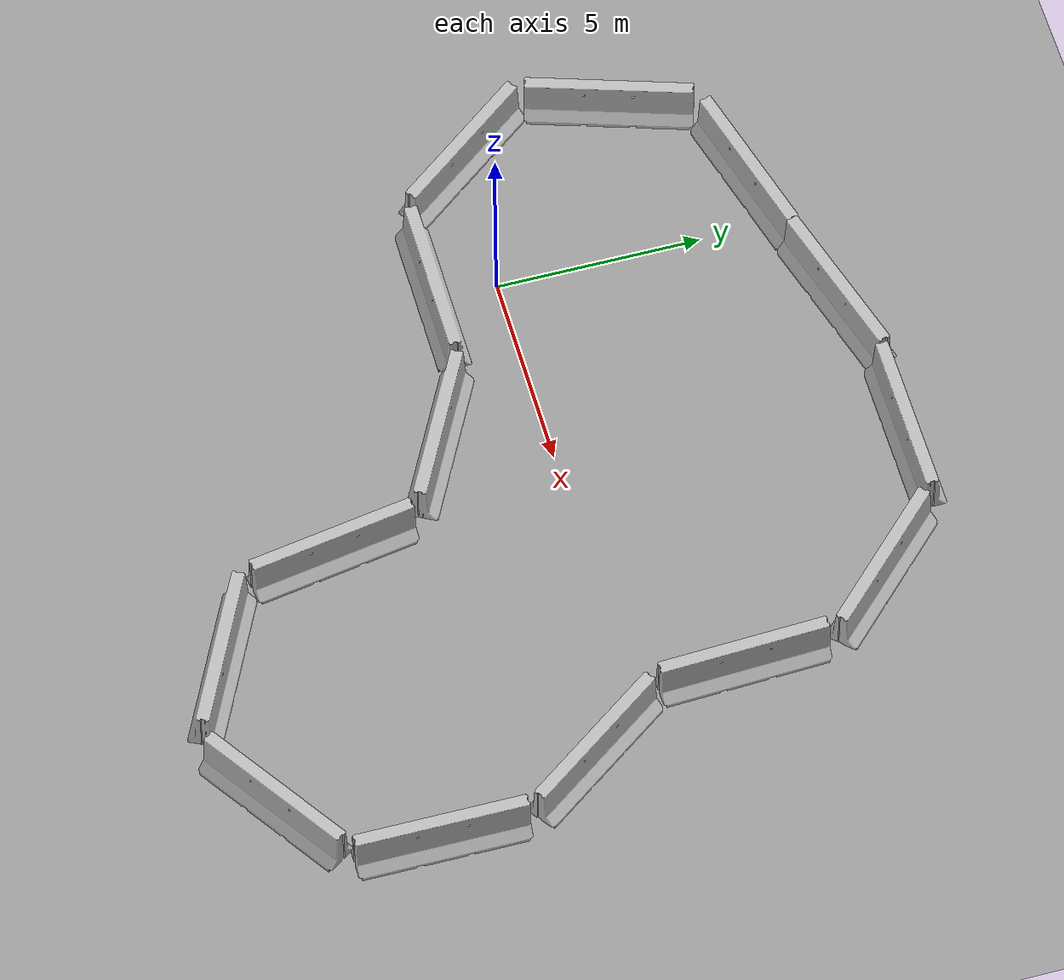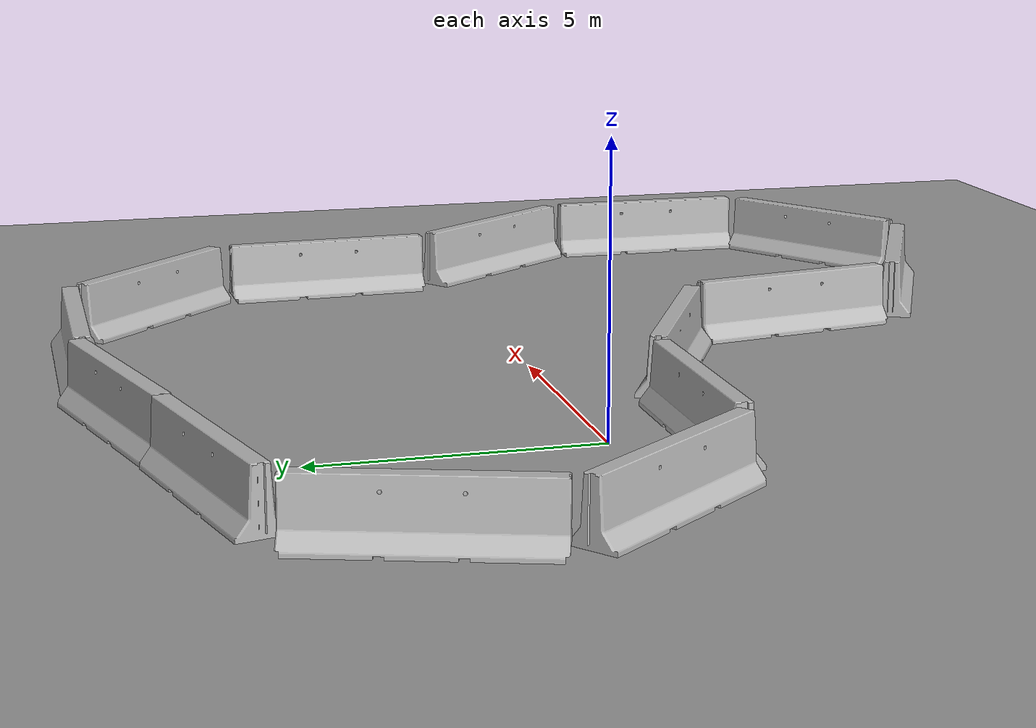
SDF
<sdf version="1.6">
 <world name="default">
  <light name="sun" type="directional">
   <pose>0 0 10 0 -0 0</pose>
   <diffuse>0.8 0.8 0.8 1</diffuse>
   <specular>0.2 0.2 0.2 1</specular>
   <attenuation>
    <range>1000</range>
    <constant>0.9</constant>
    <linear>0.01</linear>
    <quadratic>0.001</quadratic>
   </attenuation>
   <direction>0.5 0.1 -0.9</direction>
  </light>
  <scene><ambient>0.4 0.4 0.4 1</ambient><background>0.7 0.7 0.7 1</background><shadows>1</shadows></scene>
  <physics name="default_physics" default="0" type="ode">
   <max_step_size>0.01</max_step_size>
   <real_time_factor>1</real_time_factor>
   <real_time_update_rate>100</real_time_update_rate>
  </physics>
  <model name="ground_plane_0">
   <static>1</static>
   <link name="link">
    <collision name="collision">
     <geometry><plane><normal>0 0 1</normal><size>100 100</size></plane></geometry>
     <surface><friction><ode><mu>100</mu><mu2>50</mu2></ode></friction></surface>
    </collision>
    <visual name="visual">
     <cast_shadows>0</cast_shadows>
     <geometry><plane><normal>0 0 1</normal><size>100 100</size></plane></geometry>
     <material>
      <script><uri>file://media/materials/scripts/gazebo.material</uri><name>Gazebo/Grey</name></script>
     </material>
    </visual>
    <velocity_decay><linear>0</linear><angular>0</angular></velocity_decay>
   </link>
   <pose>0.497681 0 0 0 -0 0</pose>
  </model>
  <gravity>0 0 -9.8</gravity>
  <magnetic_field>6e-06 2.3e-05 -4.2e-05</magnetic_field>
  <atmosphere type="adiabatic"/>
  <spherical_coordinates>
   <surface_model>EARTH_WGS84</surface_model>
   <latitude_deg>0</latitude_deg>
   <longitude_deg>0</longitude_deg>
   <elevation>0</elevation>
   <heading_deg>0</heading_deg>
  </spherical_coordinates>
  <model name="jersey_barrier_0">
   <static>1</static>
   <link name="link">
    <visual name="visual">
     <geometry>
      <mesh><uri>model://jersey_barrier/meshes/jersey_barrier.dae</uri><scale>1 1 1</scale></mesh>
     </geometry>
    </visual>
    <collision name="upright">
     <pose>0 0 0.5715 0 -0 0</pose>
     <geometry><box><size>4.06542 0.3063 1.143</size></box></geometry>
    </collision>
    <collision name="base">
     <pose>0 0 0.032258 0 -0 0</pose>
     <geometry><box><size>4.06542 0.8107 0.064516</size></box></geometry>
    </collision>
    <collision name="base2">
     <pose>0 0 0.1 0 -0 0</pose>
     <geometry><box><size>4.06542 0.65 0.1</size></box></geometry>
    </collision>
    <collision name="base3">
     <pose>0 0 0.2 0 -0 0</pose>
     <geometry><box><size>4.06542 0.5 0.1</size></box></geometry>
    </collision>
    <collision name="left-angle">
     <pose>0 -0.224 0.2401 0.9 -0 0</pose>
     <geometry><box><size>4.06542 0.5 0.064516</size></box></geometry>
    </collision>
    <collision name="right-angle">
     <pose>0 0.224 0.2401 -0.9 0 0</pose>
     <geometry><box><size>4.06542 0.5 0.064516</size></box></geometry>
    </collision>
   </link>
   <pose>0.004494 -1.55416 0 0 -0 0</pose>
  </model>
  <model name="jersey_barrier_1">
   <static>1</static>
   <link name="link">
    <visual name="visual">
     <geometry>
      <mesh><uri>model://jersey_barrier/meshes/jersey_barrier.dae</uri><scale>1 1 1</scale></mesh>
     </geometry>
    </visual>
    <collision name="upright">
     <pose>0 0 0.5715 0 -0 0</pose>
     <geometry><box><size>4.06542 0.3063 1.143</size></box></geometry>
    </collision>
    <collision name="base">
     <pose>0 0 0.032258 0 -0 0</pose>
     <geometry><box><size>4.06542 0.8107 0.064516</size></box></geometry>
    </collision>
    <collision name="base2">
     <pose>0 0 0.1 0 -0 0</pose>
     <geometry><box><size>4.06542 0.65 0.1</size></box></geometry>
    </collision>
    <collision name="base3">
     <pose>0 0 0.2 0 -0 0</pose>
     <geometry><box><size>4.06542 0.5 0.1</size></box></geometry>
    </collision>
    <collision name="left-angle">
     <pose>0 -0.224 0.2401 0.9 -0 0</pose>
     <geometry><box><size>4.06542 0.5 0.064516</size></box></geometry>
    </collision>
    <collision name="right-angle">
     <pose>0 0.224 0.2401 -0.9 0 0</pose>
     <geometry><box><size>4.06542 0.5 0.064516</size></box></geometry>
    </collision>
   </link>
   <pose>4.04683 -2.50581 0 0 0 -0.479367</pose>
  </model>
  <model name="jersey_barrier_2">
   <static>1</static>
   <link name="link">
    <visual name="visual">
     <geometry>
      <mesh><uri>model://jersey_barrier/meshes/jersey_barrier.dae</uri><scale>1 1 1</scale></mesh>
     </geometry>
    </visual>
    <collision name="upright">
     <pose>0 0 0.5715 0 -0 0</pose>
     <geometry><box><size>4.06542 0.3063 1.143</size></box></geometry>
    </collision>
    <collision name="base">
     <pose>0 0 0.032258 0 -0 0</pose>
     <geometry><box><size>4.06542 0.8107 0.064516</size></box></geometry>
    </collision>
    <collision name="base2">
     <pose>0 0 0.1 0 -0 0</pose>
     <geometry><box><size>4.06542 0.65 0.1</size></box></geometry>
    </collision>
    <collision name="base3">
     <pose>0 0 0.2 0 -0 0</pose>
     <geometry><box><size>4.06542 0.5 0.1</size></box></geometry>
    </collision>
    <collision name="left-angle">
     <pose>0 -0.224 0.2401 0.9 -0 0</pose>
     <geometry><box><size>4.06542 0.5 0.064516</size></box></geometry>
    </collision>
    <collision name="right-angle">
     <pose>0 0.224 0.2401 -0.9 0 0</pose>
     <geometry><box><size>4.06542 0.5 0.064516</size></box></geometry>
    </collision>
   </link>
   <pose>6.37868 -5.6815 0 0 0 -1.40504</pose>
  </model>
  <model name="jersey_barrier_3">
   <static>1</static>
   <link name="link">
    <visual name="visual">
     <geometry>
      <mesh><uri>model://jersey_barrier/meshes/jersey_barrier.dae</uri><scale>1 1 1</scale></mesh>
     </geometry>
    </visual>
    <collision name="upright">
     <pose>0 0 0.5715 0 -0 0</pose>
     <geometry><box><size>4.06542 0.3063 1.143</size></box></geometry>
    </collision>
    <collision name="base">
     <pose>0 0 0.032258 0 -0 0</pose>
     <geometry><box><size>4.06542 0.8107 0.064516</size></box></geometry>
    </collision>
    <collision name="base2">
     <pose>0 0 0.1 0 -0 0</pose>
     <geometry><box><size>4.06542 0.65 0.1</size></box></geometry>
    </collision>
    <collision name="base3">
     <pose>0 0 0.2 0 -0 0</pose>
     <geometry><box><size>4.06542 0.5 0.1</size></box></geometry>
    </collision>
    <collision name="left-angle">
     <pose>0 -0.224 0.2401 0.9 -0 0</pose>
     <geometry><box><size>4.06542 0.5 0.064516</size></box></geometry>
    </collision>
    <collision name="right-angle">
     <pose>0 0.224 0.2401 -0.9 0 0</pose>
     <geometry><box><size>4.06542 0.5 0.064516</size></box></geometry>
    </collision>
   </link>
   <pose>8.62913 -8.88429 0 0 -0 2.68938</pose>
  </model>
  <model name="jersey_barrier_4">
   <static>1</static>
   <link name="link">
    <visual name="visual">
     <geometry>
      <mesh><uri>model://jersey_barrier/meshes/jersey_barrier.dae</uri><scale>1 1 1</scale></mesh>
     </geometry>
    </visual>
    <collision name="upright">
     <pose>0 0 0.5715 0 -0 0</pose>
     <geometry><box><size>4.06542 0.3063 1.143</size></box></geometry>
    </collision>
    <collision name="base">
     <pose>0 0 0.032258 0 -0 0</pose>
     <geometry><box><size>4.06542 0.8107 0.064516</size></box></geometry>
    </collision>
    <collision name="base2">
     <pose>0 0 0.1 0 -0 0</pose>
     <geometry><box><size>4.06542 0.65 0.1</size></box></geometry>
    </collision>
    <collision name="base3">
     <pose>0 0 0.2 0 -0 0</pose>
     <geometry><box><size>4.06542 0.5 0.1</size></box></geometry>
    </collision>
    <collision name="left-angle">
     <pose>0 -0.224 0.2401 0.9 -0 0</pose>
     <geometry><box><size>4.06542 0.5 0.064516</size></box></geometry>
    </collision>
    <collision name="right-angle">
     <pose>0 0.224 0.2401 -0.9 0 0</pose>
     <geometry><box><size>4.06542 0.5 0.064516</size></box></geometry>
    </collision>
   </link>
   <pose>12.5499 -8.63219 0 0 -0 0.585574</pose>
  </model>
  <model name="jersey_barrier_5">
   <static>1</static>
   <link name="link">
    <visual name="visual">
     <geometry>
      <mesh><uri>model://jersey_barrier/meshes/jersey_barrier.dae</uri><scale>1 1 1</scale></mesh>
     </geometry>
    </visual>
    <collision name="upright">
     <pose>0 0 0.5715 0 -0 0</pose>
     <geometry><box><size>4.06542 0.3063 1.143</size></box></geometry>
    </collision>
    <collision name="base">
     <pose>0 0 0.032258 0 -0 0</pose>
     <geometry><box><size>4.06542 0.8107 0.064516</size></box></geometry>
    </collision>
    <collision name="base2">
     <pose>0 0 0.1 0 -0 0</pose>
     <geometry><box><size>4.06542 0.65 0.1</size></box></geometry>
    </collision>
    <collision name="base3">
     <pose>0 0 0.2 0 -0 0</pose>
     <geometry><box><size>4.06542 0.5 0.1</size></box></geometry>
    </collision>
    <collision name="left-angle">
     <pose>0 -0.224 0.2401 0.9 -0 0</pose>
     <geometry><box><size>4.06542 0.5 0.064516</size></box></geometry>
    </collision>
    <collision name="right-angle">
     <pose>0 0.224 0.2401 -0.9 0 0</pose>
     <geometry><box><size>4.06542 0.5 0.064516</size></box></geometry>
    </collision>
   </link>
   <pose>14.4347 -5.25619 0 0 -0 1.56705</pose>
  </model>
  <model name="jersey_barrier_6">
   <static>1</static>
   <link name="link">
    <visual name="visual">
     <geometry>
      <mesh><uri>model://jersey_barrier/meshes/jersey_barrier.dae</uri><scale>1 1 1</scale></mesh>
     </geometry>
    </visual>
    <collision name="upright">
     <pose>0 0 0.5715 0 -0 0</pose>
     <geometry><box><size>4.06542 0.3063 1.143</size></box></geometry>
    </collision>
    <collision name="base">
     <pose>0 0 0.032258 0 -0 0</pose>
     <geometry><box><size>4.06542 0.8107 0.064516</size></box></geometry>
    </collision>
    <collision name="base2">
     <pose>0 0 0.1 0 -0 0</pose>
     <geometry><box><size>4.06542 0.65 0.1</size></box></geometry>
    </collision>
    <collision name="base3">
     <pose>0 0 0.2 0 -0 0</pose>
     <geometry><box><size>4.06542 0.5 0.1</size></box></geometry>
    </collision>
    <collision name="left-angle">
     <pose>0 -0.224 0.2401 0.9 -0 0</pose>
     <geometry><box><size>4.06542 0.5 0.064516</size></box></geometry>
    </collision>
    <collision name="right-angle">
     <pose>0 0.224 0.2401 -0.9 0 0</pose>
     <geometry><box><size>4.06542 0.5 0.064516</size></box></geometry>
    </collision>
   </link>
   <pose>13.2082 -1.32571 0 0 0 -0.944193</pose>
  </model>
  <model name="jersey_barrier_7">
   <static>1</static>
   <link name="link">
    <visual name="visual">
     <geometry>
      <mesh><uri>model://jersey_barrier/meshes/jersey_barrier.dae</uri><scale>1 1 1</scale></mesh>
     </geometry>
    </visual>
    <collision name="upright">
     <pose>0 0 0.5715 0 -0 0</pose>
     <geometry><box><size>4.06542 0.3063 1.143</size></box></geometry>
    </collision>
    <collision name="base">
     <pose>0 0 0.032258 0 -0 0</pose>
     <geometry><box><size>4.06542 0.8107 0.064516</size></box></geometry>
    </collision>
    <collision name="base2">
     <pose>0 0 0.1 0 -0 0</pose>
     <geometry><box><size>4.06542 0.65 0.1</size></box></geometry>
    </collision>
    <collision name="base3">
     <pose>0 0 0.2 0 -0 0</pose>
     <geometry><box><size>4.06542 0.5 0.1</size></box></geometry>
    </collision>
    <collision name="left-angle">
     <pose>0 -0.224 0.2401 0.9 -0 0</pose>
     <geometry><box><size>4.06542 0.5 0.064516</size></box></geometry>
    </collision>
    <collision name="right-angle">
     <pose>0 0.224 0.2401 -0.9 0 0</pose>
     <geometry><box><size>4.06542 0.5 0.064516</size></box></geometry>
    </collision>
   </link>
   <pose>11.8091 2.58633 0 0 0 -1.52973</pose>
  </model>
  <model name="jersey_barrier_8">
   <static>1</static>
   <link name="link">
    <visual name="visual">
     <geometry>
      <mesh><uri>model://jersey_barrier/meshes/jersey_barrier.dae</uri><scale>1 1 1</scale></mesh>
     </geometry>
    </visual>
    <collision name="upright">
     <pose>0 0 0.5715 0 -0 0</pose>
     <geometry><box><size>4.06542 0.3063 1.143</size></box></geometry>
    </collision>
    <collision name="base">
     <pose>0 0 0.032258 0 -0 0</pose>
     <geometry><box><size>4.06542 0.8107 0.064516</size></box></geometry>
    </collision>
    <collision name="base2">
     <pose>0 0 0.1 0 -0 0</pose>
     <geometry><box><size>4.06542 0.65 0.1</size></box></geometry>
    </collision>
    <collision name="base3">
     <pose>0 0 0.2 0 -0 0</pose>
     <geometry><box><size>4.06542 0.5 0.1</size></box></geometry>
    </collision>
    <collision name="left-angle">
     <pose>0 -0.224 0.2401 0.9 -0 0</pose>
     <geometry><box><size>4.06542 0.5 0.064516</size></box></geometry>
    </collision>
    <collision name="right-angle">
     <pose>0 0.224 0.2401 -0.9 0 0</pose>
     <geometry><box><size>4.06542 0.5 0.064516</size></box></geometry>
    </collision>
   </link>
   <pose>10.3163 6.36098 0 0 0 -0.786604</pose>
  </model>
  <model name="jersey_barrier_9">
   <static>1</static>
   <link name="link">
    <visual name="visual">
     <geometry>
      <mesh><uri>model://jersey_barrier/meshes/jersey_barrier.dae</uri><scale>1 1 1</scale></mesh>
     </geometry>
    </visual>
    <collision name="upright">
     <pose>0 0 0.5715 0 -0 0</pose>
     <geometry><box><size>4.06542 0.3063 1.143</size></box></geometry>
    </collision>
    <collision name="base">
     <pose>0 0 0.032258 0 -0 0</pose>
     <geometry><box><size>4.06542 0.8107 0.064516</size></box></geometry>
    </collision>
    <collision name="base2">
     <pose>0 0 0.1 0 -0 0</pose>
     <geometry><box><size>4.06542 0.65 0.1</size></box></geometry>
    </collision>
    <collision name="base3">
     <pose>0 0 0.2 0 -0 0</pose>
     <geometry><box><size>4.06542 0.5 0.1</size></box></geometry>
    </collision>
    <collision name="left-angle">
     <pose>0 -0.224 0.2401 0.9 -0 0</pose>
     <geometry><box><size>4.06542 0.5 0.064516</size></box></geometry>
    </collision>
    <collision name="right-angle">
     <pose>0 0.224 0.2401 -0.9 0 0</pose>
     <geometry><box><size>4.06542 0.5 0.064516</size></box></geometry>
    </collision>
   </link>
   <pose>6.72748 8.02959 0 0 -0 0</pose>
  </model>
  <model name="jersey_barrier_10">
   <static>1</static>
   <link name="link">
    <visual name="visual">
     <geometry>
      <mesh><uri>model://jersey_barrier/meshes/jersey_barrier.dae</uri><scale>1 1 1</scale></mesh>
     </geometry>
    </visual>
    <collision name="upright">
     <pose>0 0 0.5715 0 -0 0</pose>
     <geometry><box><size>4.06542 0.3063 1.143</size></box></geometry>
    </collision>
    <collision name="base">
     <pose>0 0 0.032258 0 -0 0</pose>
     <geometry><box><size>4.06542 0.8107 0.064516</size></box></geometry>
    </collision>
    <collision name="base2">
     <pose>0 0 0.1 0 -0 0</pose>
     <geometry><box><size>4.06542 0.65 0.1</size></box></geometry>
    </collision>
    <collision name="base3">
     <pose>0 0 0.2 0 -0 0</pose>
     <geometry><box><size>4.06542 0.5 0.1</size></box></geometry>
    </collision>
    <collision name="left-angle">
     <pose>0 -0.224 0.2401 0.9 -0 0</pose>
     <geometry><box><size>4.06542 0.5 0.064516</size></box></geometry>
    </collision>
    <collision name="right-angle">
     <pose>0 0.224 0.2401 -0.9 0 0</pose>
     <geometry><box><size>4.06542 0.5 0.064516</size></box></geometry>
    </collision>
   </link>
   <pose>2.67133 7.58216 0 0 -0 0.27595</pose>
  </model>
  <model name="jersey_barrier_11">
   <static>1</static>
   <link name="link">
    <visual name="visual">
     <geometry>
      <mesh><uri>model://jersey_barrier/meshes/jersey_barrier.dae</uri><scale>1 1 1</scale></mesh>
     </geometry>
    </visual>
    <collision name="upright">
     <pose>0 0 0.5715 0 -0 0</pose>
     <geometry><box><size>4.06542 0.3063 1.143</size></box></geometry>
    </collision>
    <collision name="base">
     <pose>0 0 0.032258 0 -0 0</pose>
     <geometry><box><size>4.06542 0.8107 0.064516</size></box></geometry>
    </collision>
    <collision name="base2">
     <pose>0 0 0.1 0 -0 0</pose>
     <geometry><box><size>4.06542 0.65 0.1</size></box></geometry>
    </collision>
    <collision name="base3">
     <pose>0 0 0.2 0 -0 0</pose>
     <geometry><box><size>4.06542 0.5 0.1</size></box></geometry>
    </collision>
    <collision name="left-angle">
     <pose>0 -0.224 0.2401 0.9 -0 0</pose>
     <geometry><box><size>4.06542 0.5 0.064516</size></box></geometry>
    </collision>
    <collision name="right-angle">
     <pose>0 0.224 0.2401 -0.9 0 0</pose>
     <geometry><box><size>4.06542 0.5 0.064516</size></box></geometry>
    </collision>
   </link>
   <pose>-1.22773 6.54971 0 0 -0 0.256234</pose>
  </model>
  <model name="jersey_barrier_12">
   <static>1</static>
   <link name="link">
    <visual name="visual">
     <geometry>
      <mesh><uri>model://jersey_barrier/meshes/jersey_barrier.dae</uri><scale>1 1 1</scale></mesh>
     </geometry>
    </visual>
    <collision name="upright">
     <pose>0 0 0.5715 0 -0 0</pose>
     <geometry><box><size>4.06542 0.3063 1.143</size></box></geometry>
    </collision>
    <collision name="base">
     <pose>0 0 0.032258 0 -0 0</pose>
     <geometry><box><size>4.06542 0.8107 0.064516</size></box></geometry>
    </collision>
    <collision name="base2">
     <pose>0 0 0.1 0 -0 0</pose>
     <geometry><box><size>4.06542 0.65 0.1</size></box></geometry>
    </collision>
    <collision name="base3">
     <pose>0 0 0.2 0 -0 0</pose>
     <geometry><box><size>4.06542 0.5 0.1</size></box></geometry>
    </collision>
    <collision name="left-angle">
     <pose>0 -0.224 0.2401 0.9 -0 0</pose>
     <geometry><box><size>4.06542 0.5 0.064516</size></box></geometry>
    </collision>
    <collision name="right-angle">
     <pose>0 0.224 0.2401 -0.9 0 0</pose>
     <geometry><box><size>4.06542 0.5 0.064516</size></box></geometry>
    </collision>
   </link>
   <pose>-4.16726 3.93693 0 0 -0 1.25432</pose>
  </model>
  <model name="jersey_barrier_13">
   <static>1</static>
   <link name="link">
    <visual name="visual">
     <geometry>
      <mesh><uri>model://jersey_barrier/meshes/jersey_barrier.dae</uri><scale>1 1 1</scale></mesh>
     </geometry>
    </visual>
    <collision name="upright">
     <pose>0 0 0.5715 0 -0 0</pose>
     <geometry><box><size>4.06542 0.3063 1.143</size></box></geometry>
    </collision>
    <collision name="base">
     <pose>0 0 0.032258 0 -0 0</pose>
     <geometry><box><size>4.06542 0.8107 0.064516</size></box></geometry>
    </collision>
    <collision name="base2">
     <pose>0 0 0.1 0 -0 0</pose>
     <geometry><box><size>4.06542 0.65 0.1</size></box></geometry>
    </collision>
    <collision name="base3">
     <pose>0 0 0.2 0 -0 0</pose>
     <geometry><box><size>4.06542 0.5 0.1</size></box></geometry>
    </collision>
    <collision name="left-angle">
     <pose>0 -0.224 0.2401 0.9 -0 0</pose>
     <geometry><box><size>4.06542 0.5 0.064516</size></box></geometry>
    </collision>
    <collision name="right-angle">
     <pose>0 0.224 0.2401 -0.9 0 0</pose>
     <geometry><box><size>4.06542 0.5 0.064516</size></box></geometry>
    </collision>
   </link>
   <pose>-3.57888 0.12746 0 0 0 -0.907857</pose>
  </model>
 </world>
</sdf>
